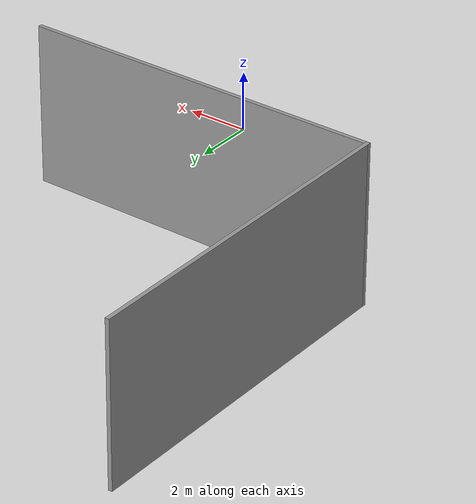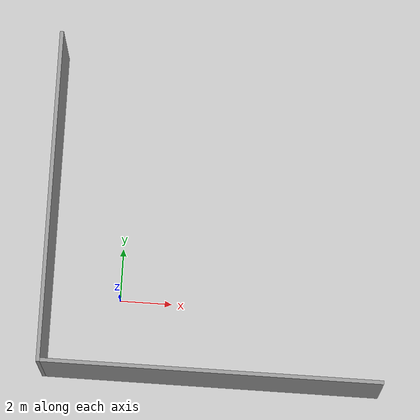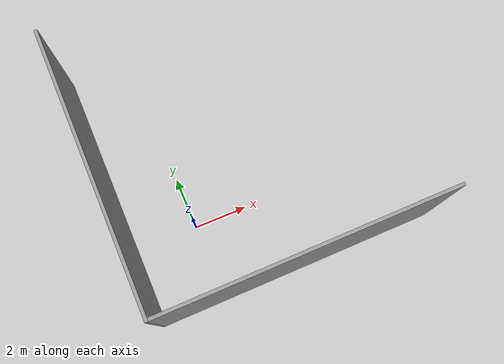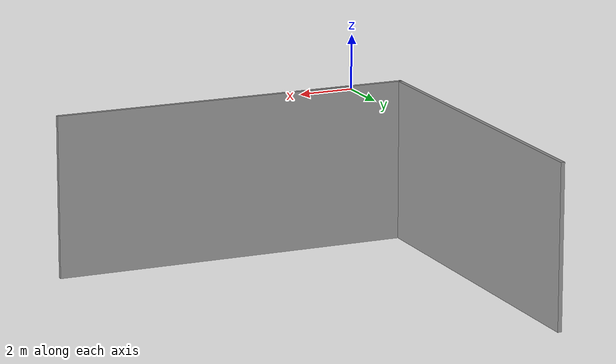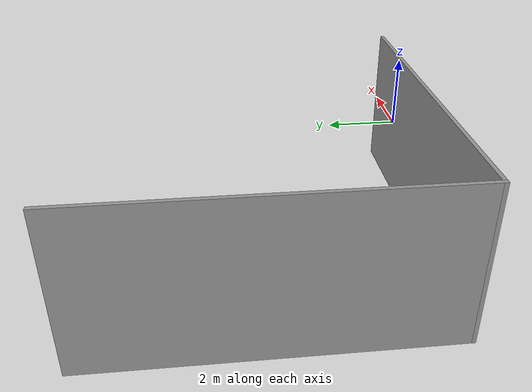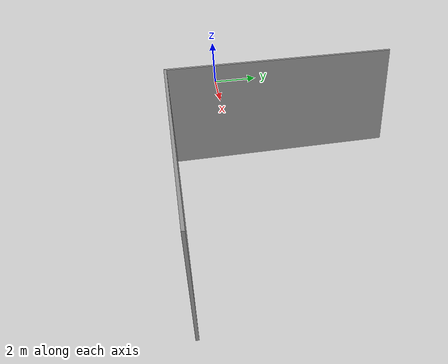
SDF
<sdf version="1.7">
 <world name="default">
  <plugin filename="gz-sim-air-pressure-system" name="gz::sim::systems::AirPressure"/>
  <plugin filename="gz-sim-imu-system" name="gz::sim::systems::Imu"/>
  <plugin filename="gz-sim-buoyancy-system" name="gz::sim::systems::Buoyancy">
   <graded_buoyancy>
    <default_density>1000</default_density>
    <density_change><above_depth>0</above_depth><density>1</density></density_change>
   </graded_buoyancy>
  </plugin>
  <plugin filename="gz-sim-physics-system" name="gz::sim::systems::Physics"/>
  <plugin filename="gz-sim-sensors-system" name="gz::sim::systems::Sensors">
   <render_engine>ogre2</render_engine>
  </plugin>
  <plugin filename="gz-sim-user-commands-system" name="gz::sim::systems::UserCommands"/>
  <plugin filename="gz-sim-scene-broadcaster-system" name="gz::sim::systems::SceneBroadcaster"/>
  <light name="sun" type="directional">
   <pose>0 0 10 0 -0 0</pose>
   <diffuse>0.8 0.8 0.8 1</diffuse>
   <specular>0.2 0.2 0.2 1</specular>
   <attenuation>
    <range>1000</range>
    <constant>0.9</constant>
    <linear>0.01</linear>
    <quadratic>0.001</quadratic>
   </attenuation>
   <direction>-0.5 0.1 -0.9</direction>
   <spot><inner_angle>0</inner_angle><outer_angle>0</outer_angle><falloff>0</falloff></spot>
  </light>
  <model name="ground_plane">
   <pose>0 0 -5 0 -0 0</pose>
   <static>1</static>
   <link name="link">
    <collision name="collision">
     <geometry><plane><normal>0 0 1</normal><size>100 100</size></plane></geometry>
     <surface><friction><ode><mu>100</mu><mu2>50</mu2></ode></friction></surface>
    </collision>
   </link>
  </model>
  <model name="water_plane">
   <static>true</static>
   <link name="link">
    <visual name="water_plane">
     <geometry><plane><size>100 100</size><normal>0 0 1</normal></plane></geometry>
     <material><ambient>0 0 1 0.5</ambient><diffuse>0 0 1 0.5</diffuse><specular>0 0 1 0.5</specular></material>
    </visual>
   </link>
  </model>
  <gravity>0 0 -9.8</gravity>
  <magnetic_field>6e-06 2.3e-05 -4.2e-05</magnetic_field>
  <atmosphere type="adiabatic"/>
  <physics type="ode">
   <max_step_size>0.001</max_step_size>
   <real_time_factor>1</real_time_factor>
   <real_time_update_rate>1000</real_time_update_rate>
  </physics>
  <scene>
   <ambient>0.4 0.4 0.4 1</ambient>
   <background>0.7 0.7 0.7 1</background>
   <shadows>1</shadows>
   <grid><pose>0 0 -5 0 0 0</pose></grid>
  </scene>
  <audio><device>default</device></audio>
  <spherical_coordinates>
   <surface_model>EARTH_WGS84</surface_model>
   <latitude_deg>0</latitude_deg>
   <longitude_deg>0</longitude_deg>
   <elevation>0</elevation>
   <heading_deg>0</heading_deg>
  </spherical_coordinates>
  <model name="Corner_Wall">
   <pose>3.62287 4.01084 -1.5 0 -0 0</pose>
   <link name="Wall_25">
    <collision name="Wall_25_Collision">
     <geometry><box><size>13 0.15 6.0</size></box></geometry>
     <pose>0 0 0 -2.0 -0 0</pose>
    </collision>
    <visual name="Wall_25_Visual">
     <pose>0 0 -2.0 0 -0 0</pose>
     <geometry><box><size>13 0.15 6.0</size></box></geometry>
     <material>
      <script><uri>file://media/materials/scripts/gazebo.material</uri><name>Gazebo/Grey</name></script>
      <ambient>1 1 1 1</ambient>
     </material>
     <meta><layer>0</layer></meta>
    </visual>
    <pose>-6.675 0 0 0 -0 1.5708</pose>
   </link>
   <link name="Wall_27">
    <collision name="Wall_27_Collision">
     <geometry><box><size>13.5 0.15 6.0</size></box></geometry>
     <pose>0 0 -2.0 0 -0 0</pose>
    </collision>
    <visual name="Wall_27_Visual">
     <pose>0 0 -2.0 0 -0 0</pose>
     <geometry><box><size>13.5 0.15 6.0</size></box></geometry>
     <material>
      <script><uri>file://media/materials/scripts/gazebo.material</uri><name>Gazebo/Grey</name></script>
      <ambient>1 1 1 1</ambient>
     </material>
     <meta><layer>0</layer></meta>
    </visual>
    <pose>0 -6.425 0 0 -0 0</pose>
   </link>
   <static>1</static>
  </model>
 </world>
</sdf>
